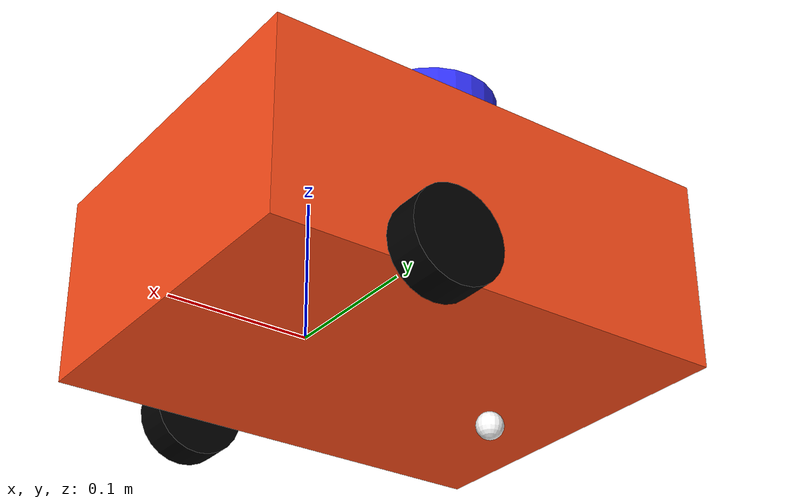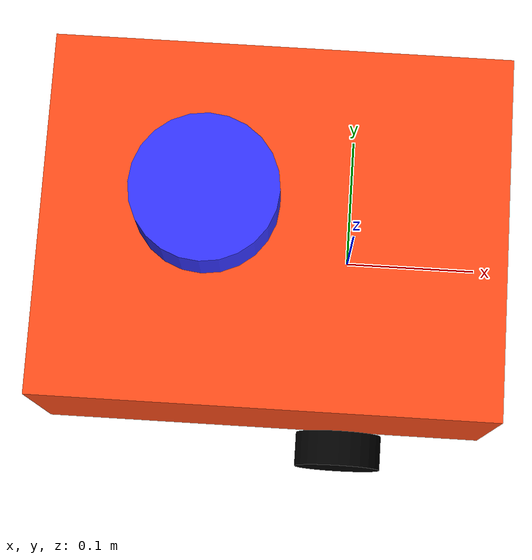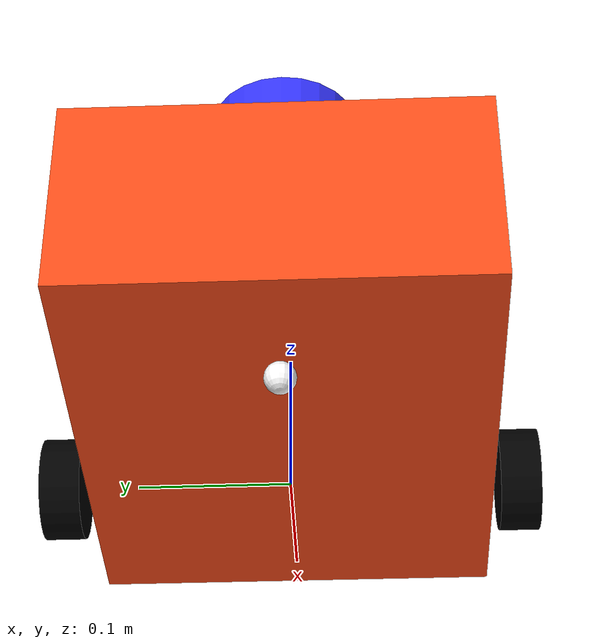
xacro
<?xml version="1.0"?>
<robot xmlns:xacro="http://www.ros.org/wiki/xacro" name="rover">

    <xacro:arg name="use_ros2_control" default="true"/>
    <xacro:arg name="sim_mode" default="true"/>

    <xacro:include filename="bot_arch.xacro" />

    <gazebo>

        <plugin name="diff_drive" filename="libgazebo_ros_diff_drive.so">

            <!-- Wheel Information -->
            <left_joint>left_wheel_joint</left_joint>
            <right_joint>right_wheel_joint</right_joint>
            <wheel_separation>0.297</wheel_separation>
            <wheel_diameter>0.066</wheel_diameter>

            <!-- Limits -->
            <max_wheel_torque>200</max_wheel_torque>
            <max_wheel_acceleration>10.0</max_wheel_acceleration>

            <!-- Output -->
            <odometry_frame>odom</odometry_frame>
            <robot_base_frame>base_link</robot_base_frame>

            <publish_odom>true</publish_odom>
            <publish_odom_tf>true</publish_odom_tf>
            <publish_wheel_tf>true</publish_wheel_tf>

        </plugin>

    </gazebo>

</robot>

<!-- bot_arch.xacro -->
<robot xmlns:xacro="http://www.ros.org/wiki/xacro">

    <xacro:include filename="inertial_macros.xacro"/>

    <xacro:property name="chassis_length" value="0.335"/>
    <xacro:property name="chassis_width" value="0.265"/>
    <xacro:property name="chassis_height" value="0.138"/>
    <xacro:property name="chassis_mass" value="1.0"/>
    <xacro:property name="wheel_radius" value="0.033"/>
    <xacro:property name="wheel_thickness" value="0.026"/>
    <xacro:property name="wheel_mass" value="0.05"/>
    <xacro:property name="wheel_offset_x" value="0.226"/>
    <xacro:property name="wheel_offset_y" value="0.1485"/>
    <xacro:property name="wheel_offset_z" value="0.01"/>
    <xacro:property name="caster_wheel_radius" value="0.01"/>
    <xacro:property name="caster_wheel_mass" value="0.01"/>
    <xacro:property name="caster_wheel_offset_x" value="0.075"/>
    <xacro:property name="caster_wheel_offset_z" value="${wheel_offset_z - wheel_radius + caster_wheel_radius}"/>

    <material name="white">
        <color rgba="1 1 1 1" />
    </material>

    <material name="orange">
        <color rgba="1 0.3 0.1 1"/>
    </material>

    <material name="blue">
        <color rgba="0.2 0.2 1 1"/>
    </material>

    <material name="black">
        <color rgba="0 0 0 1"/>
    </material>

    <material name="red">
        <color rgba="1 0 0 1"/>
    </material>

    <!-- BASE LINK -->

    <link name="base_link">

    </link>

    <!-- BASE_FOOTPRINT LINK -->

    <joint name="base_footprint_joint" type="fixed">
        <parent link="base_link"/>
        <child link="base_footprint"/>
        <origin xyz="0 0 0" rpy="0 0 0"/>
    </joint>

    <link name="base_footprint">
    </link>

    <!-- CHASSIS LINK -->

    <joint name="chassis_joint" type="fixed">
        <parent link="base_link"/>
        <child link="chassis"/>
        <origin xyz="${-wheel_offset_x} 0 ${-wheel_offset_z}"/>
    </joint>

    <link name="chassis">
        <visual>
            <origin xyz="${chassis_length/2} 0 ${chassis_height/2}"/>
            <geometry>
                <box size="${chassis_length} ${chassis_width} ${chassis_height}"/>
            </geometry>
            <material name="orange"/>
        </visual>
        <collision>
            <origin xyz="${chassis_length/2} 0 ${chassis_height/2}"/>
            <geometry>
                <box size="${chassis_length} ${chassis_width} ${chassis_height}"/>
            </geometry>
        </collision>
        <xacro:inertial_box mass="0.5" x="${chassis_length}" y="${chassis_width}" z="${chassis_height}">
            <origin xyz="${chassis_length/2} 0 ${chassis_height/2}" rpy="0 0 0"/>
        </xacro:inertial_box>
    </link>

    <gazebo reference="chassis">
        <material>Gazebo/Orange</material>
    </gazebo>

    <!-- LEFT WHEEL LINK -->

    <joint name="left_wheel_joint" type="continuous">
        <parent link="base_link"/>
        <child link="left_wheel"/>
        <origin xyz="0 ${wheel_offset_y} 0" rpy="-${pi/2} 0 0" />
        <axis xyz="0 0 1"/>
    </joint>

    <link name="left_wheel">
        <visual>
            <geometry>
                <cylinder radius="${wheel_radius}" length="${wheel_thickness}"/>
            </geometry>
            <material name="black"/>
        </visual>
        <collision>
            <geometry>
                <sphere radius="${wheel_radius}"/>
            </geometry>
        </collision>
        <xacro:inertial_cylinder mass="${wheel_mass}" length="${wheel_thickness}" radius="${wheel_radius}">
            <origin xyz="0 0 0" rpy="0 0 0"/>
        </xacro:inertial_cylinder>
    </link>

    <gazebo reference="left_wheel">
        <material>Gazebo/Black</material>
    </gazebo>

    <!-- RIGHT WHEEL LINK -->

    <joint name="right_wheel_joint" type="continuous">
        <parent link="base_link"/>
        <child link="right_wheel"/>
        <origin xyz="0 ${-wheel_offset_y} 0" rpy="${pi/2} 0 0" />
        <axis xyz="0 0 -1"/>
    </joint>

    <link name="right_wheel">
        <visual>
            <geometry>
                <cylinder radius="${wheel_radius}" length="${wheel_thickness}"/>
            </geometry>
            <material name="black"/>
        </visual>
        <collision>
            <geometry>
                <sphere radius="${wheel_radius}"/>
            </geometry>
        </collision>
        <xacro:inertial_cylinder mass="${wheel_mass}" length="${wheel_thickness}" radius="${wheel_radius}">
            <origin xyz="0 0 0" rpy="0 0 0"/>
        </xacro:inertial_cylinder>
    </link>

    <gazebo reference="right_wheel">
        <material>Gazebo/Black</material>
    </gazebo>

    <!-- CASTER WHEEL LINK -->

    <joint name="caster_wheel_joint" type="fixed">
        <parent link="chassis"/>
        <child link="caster_wheel"/>
        <origin xyz="${caster_wheel_offset_x} 0 ${caster_wheel_offset_z}"/>
    </joint>

    <link name="caster_wheel">
        <visual>
            <geometry>
                <sphere radius="${caster_wheel_radius}"/>
            </geometry>
            <material name="white"/>
        </visual>
        <collision>
            <geometry>
                <sphere radius="${caster_wheel_radius}"/>
            </geometry>
        </collision>
        <xacro:inertial_sphere mass="${caster_wheel_mass}" radius="${caster_wheel_radius}">
            <origin xyz="0 0 0" rpy="0 0 0"/>
        </xacro:inertial_sphere>
    </link>

    <gazebo reference="caster_wheel">
        <material>Gazebo/White</material>
        <mu1 value="0.001"/>
        <mu2 value="0.001"/>
    </gazebo>

    <!-- LIDAR LINK -->
    <joint name="laser_joint" type="fixed">
        <parent link="chassis"/>
        <child link="laser_frame"/>
        <origin xyz="0.122 0 0.212" rpy="0 0 0"/>
    </joint>

    <link name="laser_frame">
        <visual>
            <geometry>
                <cylinder radius="0.05" length="0.04"/>
            </geometry>
            <material name="blue"/>
        </visual>
        <visual>
            <origin xyz="0 0 -0.05"/>
            <geometry>
                <cylinder radius="0.01" length="0.1"/>
            </geometry>
            <material name="blue"/>
        </visual>
        <collision>
            <geometry>
                <cylinder radius="0.05" length="0.04"/>
            </geometry>
        </collision>
        <xacro:inertial_cylinder mass="0.1" length="0.04" radius="0.05">
            <origin xyz="0 0 0" rpy="0 0 0"/>
        </xacro:inertial_cylinder>
    </link>

    <gazebo reference="laser_frame">
        <material>Gazebo/Blue</material>

        <sensor name="laser" type="ray">
            <pose> 0 0 0 0 0 0 </pose>
            <visualize>true</visualize>
            <update_rate>10</update_rate>
            <ray>
                <scan>
                    <horizontal>
                        <samples>360</samples>
                        <min_angle>-3.14</min_angle>
                        <max_angle>3.14</max_angle>
                    </horizontal>
                </scan>
                <range>
                    <min>0.3</min>
                    <max>12</max>
                </range>
            </ray>

            <plugin name="laser_controller" filename="libgazebo_ros_ray_sensor.so">
                <ros>
                    <remapping>~/out:=scan</remapping>
                </ros>
                <output_type>sensor_msgs/LaserScan</output_type>
                <frame_name>laser_frame</frame_name>
            </plugin>
        </sensor>

    </gazebo>

</robot>

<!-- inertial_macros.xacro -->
<robot xmlns:xacro="http://www.ros.org/wiki/xacro" >

    <!-- Specify some standard inertial calculations https://en.wikipedia.org/wiki/List_of_moments_of_inertia -->
    <!-- These make use of xacro's mathematical functionality -->

    <xacro:macro name="inertial_sphere" params="mass radius *origin">
        <inertial>
            <xacro:insert_block name="origin"/>
            <mass value="${mass}" />
            <inertia ixx="${(2/5) * mass * (radius*radius)}" ixy="0.0" ixz="0.0"
                    iyy="${(2/5) * mass * (radius*radius)}" iyz="0.0"
                    izz="${(2/5) * mass * (radius*radius)}" />
        </inertial>
    </xacro:macro>

    <xacro:macro name="inertial_box" params="mass x y z *origin">
        <inertial>
            <xacro:insert_block name="origin"/>
            <mass value="${mass}" />
            <inertia ixx="${(1/12) * mass * (y*y+z*z)}" ixy="0.0" ixz="0.0"
                    iyy="${(1/12) * mass * (x*x+z*z)}" iyz="0.0"
                    izz="${(1/12) * mass * (x*x+y*y)}" />
        </inertial>
    </xacro:macro>

    <xacro:macro name="inertial_cylinder" params="mass length radius *origin">
        <inertial>
            <xacro:insert_block name="origin"/>
            <mass value="${mass}" />
            <inertia ixx="${(1/12) * mass * (3*radius*radius + length*length)}" ixy="0.0" ixz="0.0"
                    iyy="${(1/12) * mass * (3*radius*radius + length*length)}" iyz="0.0"
                    izz="${(1/2) * mass * (radius*radius)}" />
        </inertial>
    </xacro:macro>

</robot>
